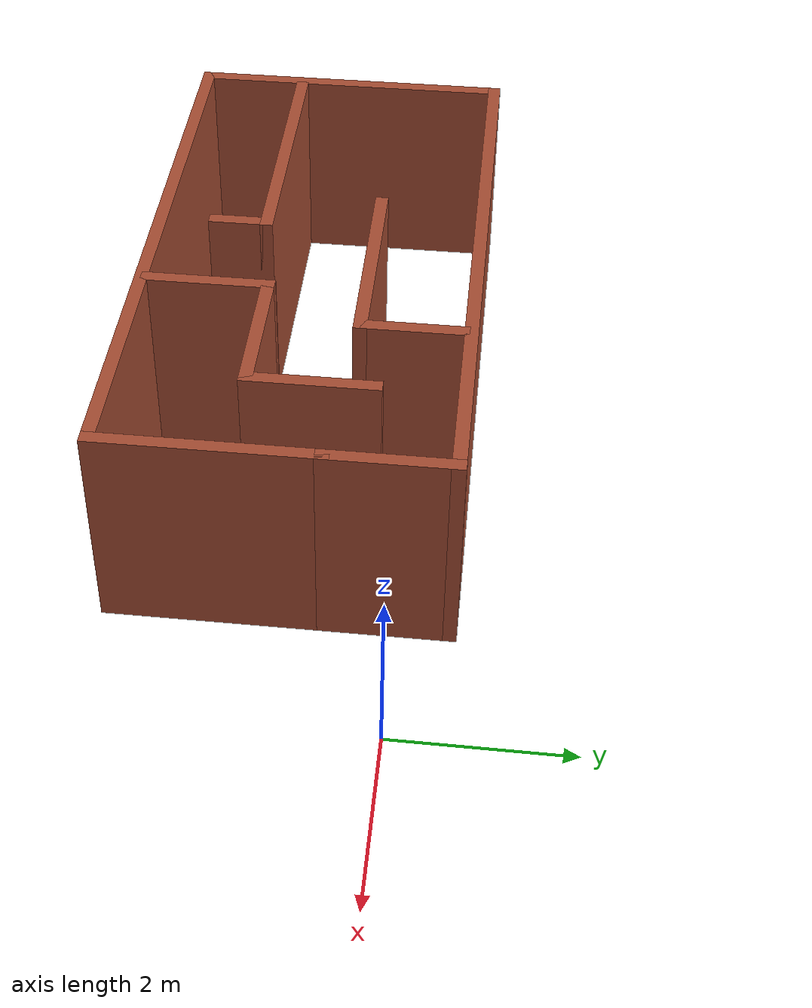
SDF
<?xml version='1.0'?>
<sdf version='1.7'>
  <model name='room'>
    <pose>-4.3175 -1.26 0 0 -0 0</pose>
    <link name='Wall_0'>
      <collision name='Wall_0_Collision'>
        <geometry>
          <box>
            <size>7.25 0.15 2.5</size>
          </box>
        </geometry>
        <pose>0 0 1.25 0 -0 0</pose>
      </collision>
      <visual name='Wall_0_Visual'>
        <pose>0 0 1.25 0 -0 0</pose>
        <geometry>
          <box>
            <size>7.25 0.15 2.5</size>
          </box>
        </geometry>
        <material>
          <script>
            <uri>file://media/materials/scripts/gazebo.material</uri>
            <name>Gazebo/Bricks</name>
          </script>
          <ambient>1 1 1 1</ambient>
        </material>
        <meta>
          <layer>0</layer>
        </meta>
      </visual>
      <pose>-0.6925 -1.85 0 0 -0 0</pose>
    </link>
    <link name='Wall_1'>
      <collision name='Wall_1_Collision'>
        <geometry>
          <box>
            <size>2.5 0.15 2.5</size>
          </box>
        </geometry>
        <pose>0 0 1.25 0 -0 0</pose>
      </collision>
      <visual name='Wall_1_Visual'>
        <pose>0 0 1.25 0 -0 0</pose>
        <geometry>
          <box>
            <size>2.5 0.15 2.5</size>
          </box>
        </geometry>
        <material>
          <script>
            <uri>file://media/materials/scripts/gazebo.material</uri>
            <name>Gazebo/Bricks</name>
          </script>
          <ambient>1 1 1 1</ambient>
        </material>
        <meta>
          <layer>0</layer>
        </meta>
      </visual>
      <pose>2.8575 -0.675 0 0 -0 1.5708</pose>
    </link>
    <link name='Wall_10'>
      <collision name='Wall_10_Collision'>
        <geometry>
          <box>
            <size>1.25 0.15 2.5</size>
          </box>
        </geometry>
        <pose>0 0 1.25 0 -0 0</pose>
      </collision>
      <visual name='Wall_10_Visual'>
        <pose>0 0 1.25 0 -0 0</pose>
        <geometry>
          <box>
            <size>1.25 0.15 2.5</size>
          </box>
        </geometry>
        <material>
          <script>
            <uri>file://media/materials/scripts/gazebo.material</uri>
            <name>Gazebo/Bricks</name>
          </script>
          <ambient>1 1 1 1</ambient>
        </material>
        <meta>
          <layer>0</layer>
        </meta>
      </visual>
      <pose>0.75847 1.20579 0 0 -0 -1.5708</pose>
    </link>
    <link name='Wall_11'>
      <collision name='Wall_11_Collision'>
        <geometry>
          <box>
            <size>2.5 0.15 2.5</size>
          </box>
        </geometry>
        <pose>0 0 1.25 0 -0 0</pose>
      </collision>
      <visual name='Wall_11_Visual'>
        <pose>0 0 1.25 0 -0 0</pose>
        <geometry>
          <box>
            <size>2.5 0.15 2.5</size>
          </box>
        </geometry>
        <material>
          <script>
            <uri>file://media/materials/scripts/gazebo.material</uri>
            <name>Gazebo/Bricks</name>
          </script>
          <ambient>1 1 1 1</ambient>
        </material>
        <meta>
          <layer>0</layer>
        </meta>
      </visual>
      <pose>-0.41653 0.655786 0 0 -0 3.14159</pose>
    </link>
    <link name='Wall_13'>
      <collision name='Wall_13_Collision'>
        <geometry>
          <box>
            <size>1.5 0.15 2.5</size>
          </box>
        </geometry>
        <pose>0 0 1.25 0 -0 0</pose>
      </collision>
      <visual name='Wall_13_Visual'>
        <pose>0 0 1.25 0 -0 0</pose>
        <geometry>
          <box>
            <size>1.5 0.15 2.5</size>
          </box>
        </geometry>
        <material>
          <script>
            <uri>file://media/materials/scripts/gazebo.material</uri>
            <name>Gazebo/Bricks</name>
          </script>
          <ambient>1 1 1 1</ambient>
        </material>
        <meta>
          <layer>0</layer>
        </meta>
      </visual>
      <pose>0.160431 -1.10468 0 0 -0 1.5708</pose>
    </link>
    <link name='Wall_14'>
      <collision name='Wall_14_Collision'>
        <geometry>
          <box>
            <size>1.75 0.15 2.5</size>
          </box>
        </geometry>
        <pose>0 0 1.25 0 -0 0</pose>
      </collision>
      <visual name='Wall_14_Visual'>
        <pose>0 0 1.25 0 -0 0</pose>
        <geometry>
          <box>
            <size>1.75 0.15 2.5</size>
          </box>
        </geometry>
        <material>
          <script>
            <uri>file://media/materials/scripts/gazebo.material</uri>
            <name>Gazebo/Bricks</name>
          </script>
          <ambient>1 1 1 1</ambient>
        </material>
        <meta>
          <layer>0</layer>
        </meta>
      </visual>
      <pose>0.960431 -0.42968 0 0 -0 0</pose>
    </link>
    <link name='Wall_15'>
      <collision name='Wall_15_Collision'>
        <geometry>
          <box>
            <size>1.5 0.15 2.5</size>
          </box>
        </geometry>
        <pose>0 0 1.25 0 -0 0</pose>
      </collision>
      <visual name='Wall_15_Visual'>
        <pose>0 0 1.25 0 -0 0</pose>
        <geometry>
          <box>
            <size>1.5 0.15 2.5</size>
          </box>
        </geometry>
        <material>
          <script>
            <uri>file://media/materials/scripts/gazebo.material</uri>
            <name>Gazebo/Bricks</name>
          </script>
          <ambient>1 1 1 1</ambient>
        </material>
        <meta>
          <layer>0</layer>
        </meta>
      </visual>
      <pose>1.76043 0.24532 0 0 -0 1.5708</pose>
    </link>
    <link name='Wall_3'>
      <collision name='Wall_3_Collision'>
        <geometry>
          <box>
            <size>1.5 0.15 2.5</size>
          </box>
        </geometry>
        <pose>0 0 1.25 0 -0 0</pose>
      </collision>
      <visual name='Wall_3_Visual'>
        <pose>0 0 1.25 0 -0 0</pose>
        <geometry>
          <box>
            <size>1.5 0.15 2.5</size>
          </box>
        </geometry>
        <material>
          <script>
            <uri>file://media/materials/scripts/gazebo.material</uri>
            <name>Gazebo/Bricks</name>
          </script>
          <ambient>1 1 1 1</ambient>
        </material>
        <meta>
          <layer>0</layer>
        </meta>
      </visual>
      <pose>2.8575 1.175 0 0 -0 1.5708</pose>
    </link>
    <link name='Wall_4'>
      <collision name='Wall_4_Collision'>
        <geometry>
          <box>
            <size>7.25 0.15 2.5</size>
          </box>
        </geometry>
        <pose>0 0 1.25 0 -0 0</pose>
      </collision>
      <visual name='Wall_4_Visual'>
        <pose>0 0 1.25 0 -0 0</pose>
        <geometry>
          <box>
            <size>7.25 0.15 2.5</size>
          </box>
        </geometry>
        <material>
          <script>
            <uri>file://media/materials/scripts/gazebo.material</uri>
            <name>Gazebo/Bricks</name>
          </script>
          <ambient>1 1 1 1</ambient>
        </material>
        <meta>
          <layer>0</layer>
        </meta>
      </visual>
      <pose>-0.6925 1.85 0 0 -0 3.14159</pose>
    </link>
    <link name='Wall_5'>
      <collision name='Wall_5_Collision'>
        <geometry>
          <box>
            <size>3.85 0.15 2.5</size>
          </box>
        </geometry>
        <pose>0 0 1.25 0 -0 0</pose>
      </collision>
      <visual name='Wall_5_Visual'>
        <pose>0 0 1.25 0 -0 0</pose>
        <geometry>
          <box>
            <size>3.85 0.15 2.5</size>
          </box>
        </geometry>
        <material>
          <script>
            <uri>file://media/materials/scripts/gazebo.material</uri>
            <name>Gazebo/Bricks</name>
          </script>
          <ambient>1 1 1 1</ambient>
        </material>
        <meta>
          <layer>0</layer>
        </meta>
      </visual>
      <pose>-4.2425 0 0 0 -0 -1.5708</pose>
    </link>
    <link name='Wall_7'>
      <collision name='Wall_7_Collision'>
        <geometry>
          <box>
            <size>3.25 0.15 2.5</size>
          </box>
        </geometry>
        <pose>0 0 1.25 0 -0 0</pose>
      </collision>
      <visual name='Wall_7_Visual'>
        <pose>0 0 1.25 0 -0 0</pose>
        <geometry>
          <box>
            <size>3.25 0.15 2.5</size>
          </box>
        </geometry>
        <material>
          <script>
            <uri>file://media/materials/scripts/gazebo.material</uri>
            <name>Gazebo/Bricks</name>
          </script>
          <ambient>1 1 1 1</ambient>
        </material>
        <meta>
          <layer>0</layer>
        </meta>
      </visual>
      <pose>-2.58138 -0.61878 0 0 -0 0</pose>
    </link>
    <link name='Wall_8'>
      <collision name='Wall_8_Collision'>
        <geometry>
          <box>
            <size>0.75 0.15 2.5</size>
          </box>
        </geometry>
        <pose>0 0 1.25 0 -0 0</pose>
      </collision>
      <visual name='Wall_8_Visual'>
        <pose>0 0 1.25 0 -0 0</pose>
        <geometry>
          <box>
            <size>0.75 0.15 2.5</size>
          </box>
        </geometry>
        <material>
          <script>
            <uri>file://media/materials/scripts/gazebo.material</uri>
            <name>Gazebo/Bricks</name>
          </script>
          <ambient>1 1 1 1</ambient>
        </material>
        <meta>
          <layer>0</layer>
        </meta>
      </visual>
      <pose>-1.03138 -0.918781 0 0 -0 -1.5708</pose>
    </link>
    <static>1</static>
  </model>
</sdf>
